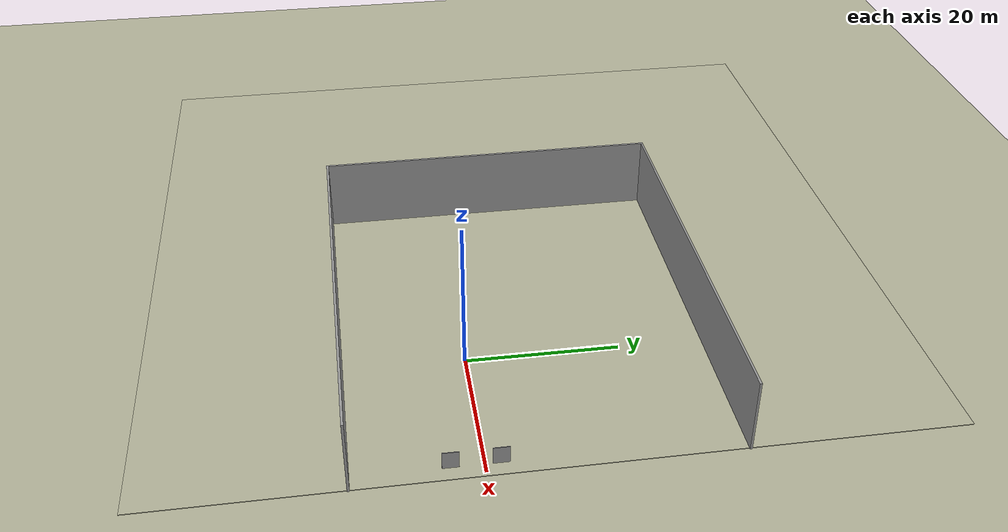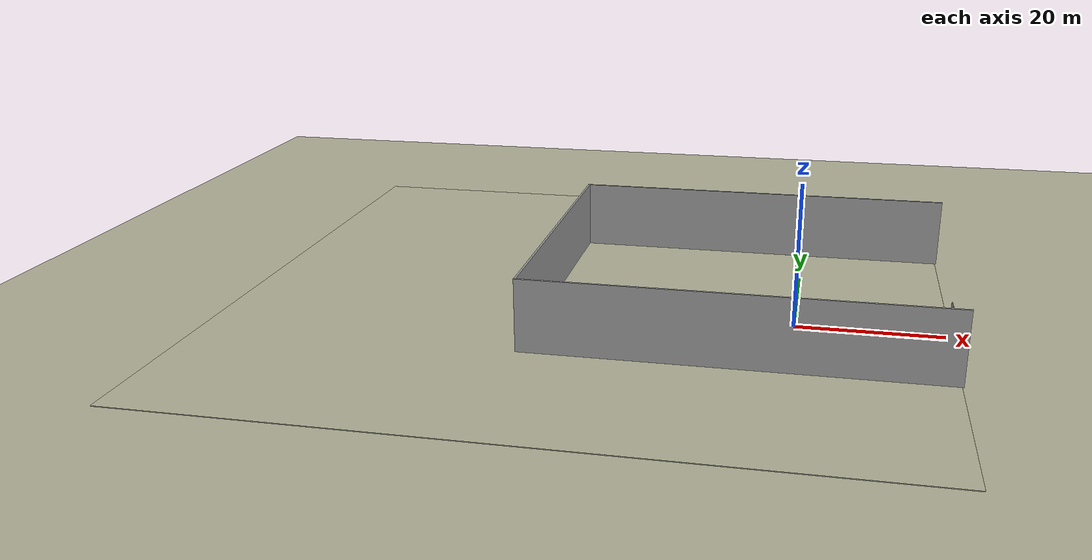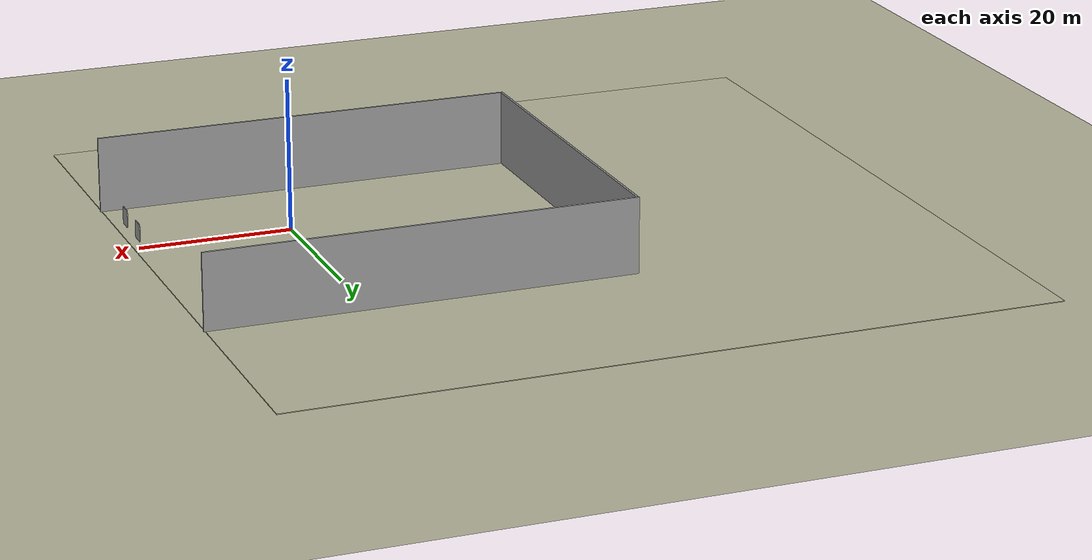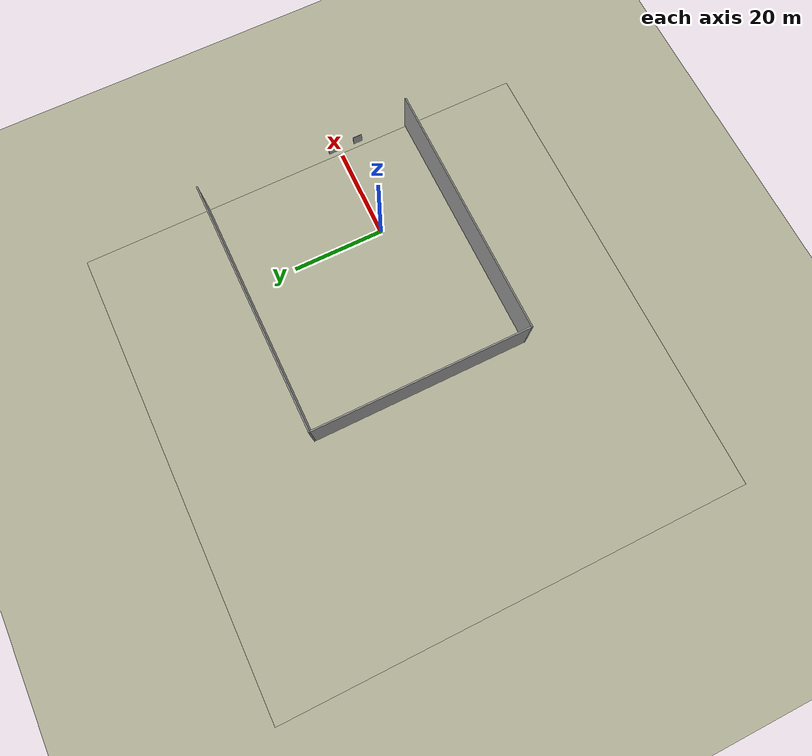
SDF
<sdf version="1.6">
 <world name="default">
  <model name="unit_box">
   <link name="link">
    <inertial>
     <mass>1</mass>
     <inertia>
      <ixx>0.166667</ixx>
      <ixy>0</ixy>
      <ixz>0</ixz>
      <iyy>0.166667</iyy>
      <iyz>0</iyz>
      <izz>0.166667</izz>
     </inertia>
    </inertial>
    <visual name="visual">
     <geometry><box><size>55.9 0.3 10</size></box></geometry>
     <material>
      <script><name>Gazebo/Grey</name><uri>file://media/materials/scripts/gazebo.material</uri></script>
      <shader type="vertex"><normal_map>__default__</normal_map></shader>
      <ambient>0.3 0.3 0.3 1</ambient>
      <diffuse>0.7 0.7 0.7 1</diffuse>
      <specular>0.01 0.01 0.01 1</specular>
      <emissive>0 0 0 1</emissive>
     </material>
    </visual>
    <collision name="collision">
     <geometry><box><size>55.9 0.3 10</size></box></geometry>
     <surface>
      <friction>
       <ode><mu>1</mu><mu2>1</mu2><fdir1>0 0 0</fdir1><slip1>0</slip1><slip2>0</slip2></ode>
       <torsional>
        <coefficient>1</coefficient>
        <patch_radius>0</patch_radius>
        <surface_radius>0</surface_radius>
        <use_patch_radius>1</use_patch_radius>
        <ode><slip>0</slip></ode>
       </torsional>
      </friction>
      <bounce><restitution_coefficient>0</restitution_coefficient><threshold>1e+06</threshold></bounce>
      <contact>
       <collide_without_contact>0</collide_without_contact>
       <collide_without_contact_bitmask>1</collide_without_contact_bitmask>
       <collide_bitmask>1</collide_bitmask>
       <ode>
        <soft_cfm>0</soft_cfm>
        <soft_erp>0.2</soft_erp>
        <kp>1e+13</kp>
        <kd>1</kd>
        <max_vel>0.01</max_vel>
        <min_depth>0</min_depth>
       </ode>
       <bullet>
        <split_impulse>1</split_impulse>
        <split_impulse_penetration_threshold>-0.01</split_impulse_penetration_threshold>
        <soft_cfm>0</soft_cfm>
        <soft_erp>0.2</soft_erp>
        <kp>1e+13</kp>
        <kd>1</kd>
       </bullet>
      </contact>
     </surface>
    </collision>
   </link>
   <static>1</static>
   <pose>-7.07723 -15.7632 5.02175 0 -0 0</pose>
  </model>
  <model name="unit_box_clone">
   <link name="link">
    <inertial>
     <mass>1</mass>
     <inertia>
      <ixx>0.166667</ixx>
      <ixy>0</ixy>
      <ixz>0</ixz>
      <iyy>0.166667</iyy>
      <iyz>0</iyz>
      <izz>0.166667</izz>
     </inertia>
    </inertial>
    <visual name="visual">
     <geometry><box><size>55.9 0.3 10</size></box></geometry>
     <material>
      <script><name>Gazebo/Grey</name><uri>file://media/materials/scripts/gazebo.material</uri></script>
      <shader type="vertex"><normal_map>__default__</normal_map></shader>
      <ambient>0.3 0.3 0.3 1</ambient>
      <diffuse>0.7 0.7 0.7 1</diffuse>
      <specular>0.01 0.01 0.01 1</specular>
      <emissive>0 0 0 1</emissive>
     </material>
    </visual>
    <collision name="collision">
     <geometry><box><size>55.9 0.3 10</size></box></geometry>
     <surface>
      <friction>
       <ode><mu>1</mu><mu2>1</mu2><fdir1>0 0 0</fdir1><slip1>0</slip1><slip2>0</slip2></ode>
       <torsional>
        <coefficient>1</coefficient>
        <patch_radius>0</patch_radius>
        <surface_radius>0</surface_radius>
        <use_patch_radius>1</use_patch_radius>
        <ode><slip>0</slip></ode>
       </torsional>
      </friction>
      <bounce><restitution_coefficient>0</restitution_coefficient><threshold>1e+06</threshold></bounce>
      <contact>
       <collide_without_contact>0</collide_without_contact>
       <collide_without_contact_bitmask>1</collide_without_contact_bitmask>
       <collide_bitmask>1</collide_bitmask>
       <ode>
        <soft_cfm>0</soft_cfm>
        <soft_erp>0.2</soft_erp>
        <kp>1e+13</kp>
        <kd>1</kd>
        <max_vel>0.01</max_vel>
        <min_depth>0</min_depth>
       </ode>
       <bullet>
        <split_impulse>1</split_impulse>
        <split_impulse_penetration_threshold>-0.01</split_impulse_penetration_threshold>
        <soft_cfm>0</soft_cfm>
        <soft_erp>0.2</soft_erp>
        <kp>1e+13</kp>
        <kd>1</kd>
       </bullet>
      </contact>
     </surface>
    </collision>
   </link>
   <static>1</static>
   <pose>-7.07723 31.1736 5.02175 0 -0 0</pose>
  </model>
  <model name="unit_box_clone_0_clone">
   <link name="link">
    <inertial>
     <mass>1</mass>
     <inertia>
      <ixx>0.166667</ixx>
      <ixy>0</ixy>
      <ixz>0</ixz>
      <iyy>0.166667</iyy>
      <iyz>0</iyz>
      <izz>0.166667</izz>
     </inertia>
    </inertial>
    <visual name="visual">
     <geometry><box><size>47 0.3 10</size></box></geometry>
     <material>
      <script><name>Gazebo/Grey</name><uri>file://media/materials/scripts/gazebo.material</uri></script>
      <shader type="vertex"><normal_map>__default__</normal_map></shader>
      <ambient>0.3 0.3 0.3 1</ambient>
      <diffuse>0.7 0.7 0.7 1</diffuse>
      <specular>0.01 0.01 0.01 1</specular>
      <emissive>0 0 0 1</emissive>
     </material>
    </visual>
    <collision name="collision">
     <geometry><box><size>47 0.3 10</size></box></geometry>
     <surface>
      <friction>
       <ode><mu>1</mu><mu2>1</mu2><fdir1>0 0 0</fdir1><slip1>0</slip1><slip2>0</slip2></ode>
       <torsional>
        <coefficient>1</coefficient>
        <patch_radius>0</patch_radius>
        <surface_radius>0</surface_radius>
        <use_patch_radius>1</use_patch_radius>
        <ode><slip>0</slip></ode>
       </torsional>
      </friction>
      <bounce><restitution_coefficient>0</restitution_coefficient><threshold>1e+06</threshold></bounce>
      <contact>
       <collide_without_contact>0</collide_without_contact>
       <collide_without_contact_bitmask>1</collide_without_contact_bitmask>
       <collide_bitmask>1</collide_bitmask>
       <ode>
        <soft_cfm>0</soft_cfm>
        <soft_erp>0.2</soft_erp>
        <kp>1e+13</kp>
        <kd>1</kd>
        <max_vel>0.01</max_vel>
        <min_depth>0</min_depth>
       </ode>
       <bullet>
        <split_impulse>1</split_impulse>
        <split_impulse_penetration_threshold>-0.01</split_impulse_penetration_threshold>
        <soft_cfm>0</soft_cfm>
        <soft_erp>0.2</soft_erp>
        <kp>1e+13</kp>
        <kd>1</kd>
       </bullet>
      </contact>
     </surface>
    </collision>
   </link>
   <static>1</static>
   <pose>-34.8508 7.80061 5.02175 0 -0 1.5703</pose>
  </model>
  <model name="ground_plane_residential">
   <static>1</static>
   <link name="link">
    <collision name="collision">
     <geometry><plane><normal>0 0 1</normal><size>100 100</size></plane></geometry>
     <surface><friction><ode><mu>100</mu><mu2>50</mu2></ode></friction></surface>
    </collision>
    <visual name="visual">
     <cast_shadows>0</cast_shadows>
     <geometry><plane><normal>0 0 1</normal><size>100 100</size></plane></geometry>
     <material>
      <script><uri>file://media/materials/scripts/gazebo.material</uri><name>Gazebo/Residential</name></script>
     </material>
    </visual>
   </link>
   <pose>10.826 8.93062 0 0 -0 0</pose>
  </model>
  <model name="ground_plane_residential_0">
   <static>1</static>
   <link name="link">
    <collision name="collision">
     <geometry><plane><normal>0 0 1</normal><size>100 100</size></plane></geometry>
     <surface><friction><ode><mu>100</mu><mu2>50</mu2></ode></friction></surface>
    </collision>
    <visual name="visual">
     <cast_shadows>0</cast_shadows>
     <geometry><plane><normal>0 0 1</normal><size>100 100</size></plane></geometry>
     <material>
      <script><uri>file://media/materials/scripts/gazebo.material</uri><name>Gazebo/Residential</name></script>
     </material>
    </visual>
   </link>
   <pose>-29.3425 8.99589 0 0 -0 0</pose>
  </model>
  <model name="unit_box_0_clone_clone">
   <link name="link">
    <inertial>
     <mass>1</mass>
     <inertia>
      <ixx>0.166667</ixx>
      <ixy>0</ixy>
      <ixz>0</ixz>
      <iyy>0.166667</iyy>
      <iyz>0</iyz>
      <izz>0.166667</izz>
     </inertia>
    </inertial>
    <visual name="visual">
     <geometry><box><size>0.1 2 2.3</size></box></geometry>
     <material>
      <script><name>Gazebo/Grey</name><uri>file://media/materials/scripts/gazebo.material</uri></script>
      <shader type="vertex"><normal_map>__default__</normal_map></shader>
      <ambient>0.2 0.2 0.2 1</ambient>
      <diffuse>0.1 0.1 0.1 1</diffuse>
      <specular>0.5 0.5 0.5 1</specular>
      <emissive>0 0 0 1</emissive>
     </material>
    </visual>
    <collision name="collision">
     <geometry><box><size>0.1 2 2.3</size></box></geometry>
     <surface>
      <friction>
       <ode><mu>1</mu><mu2>1</mu2><fdir1>0 0 0</fdir1><slip1>0</slip1><slip2>0</slip2></ode>
       <torsional>
        <coefficient>1</coefficient>
        <patch_radius>0</patch_radius>
        <surface_radius>0</surface_radius>
        <use_patch_radius>1</use_patch_radius>
        <ode><slip>0</slip></ode>
       </torsional>
      </friction>
      <bounce><restitution_coefficient>0</restitution_coefficient><threshold>1e+06</threshold></bounce>
      <contact>
       <collide_without_contact>0</collide_without_contact>
       <collide_without_contact_bitmask>1</collide_without_contact_bitmask>
       <collide_bitmask>1</collide_bitmask>
       <ode>
        <soft_cfm>0</soft_cfm>
        <soft_erp>0.2</soft_erp>
        <kp>1e+13</kp>
        <kd>1</kd>
        <max_vel>0.01</max_vel>
        <min_depth>0</min_depth>
       </ode>
       <bullet>
        <split_impulse>1</split_impulse>
        <split_impulse_penetration_threshold>-0.01</split_impulse_penetration_threshold>
        <soft_cfm>0</soft_cfm>
        <soft_erp>0.2</soft_erp>
        <kp>1e+13</kp>
        <kd>1</kd>
       </bullet>
      </contact>
     </surface>
    </collision>
   </link>
   <static>1</static>
   <pose>20.6155 1.6862 3.03081 0 -0 0</pose>
  </model>
  <model name="unit_box_0_clone_clone_0">
   <link name="link">
    <inertial>
     <mass>1</mass>
     <inertia>
      <ixx>0.166667</ixx>
      <ixy>0</ixy>
      <ixz>0</ixz>
      <iyy>0.166667</iyy>
      <iyz>0</iyz>
      <izz>0.166667</izz>
     </inertia>
    </inertial>
    <visual name="visual">
     <geometry><box><size>0.1 2 2.3</size></box></geometry>
     <material>
      <script><name>Gazebo/Grey</name><uri>file://media/materials/scripts/gazebo.material</uri></script>
      <shader type="vertex"><normal_map>__default__</normal_map></shader>
      <ambient>0.2 0.2 0.2 1</ambient>
      <diffuse>0.1 0.1 0.1 1</diffuse>
      <specular>0.5 0.5 0.5 1</specular>
      <emissive>0 0 0 1</emissive>
     </material>
    </visual>
    <collision name="collision">
     <geometry><box><size>0.1 2 2.3</size></box></geometry>
     <surface>
      <friction>
       <ode><mu>1</mu><mu2>1</mu2><fdir1>0 0 0</fdir1><slip1>0</slip1><slip2>0</slip2></ode>
       <torsional>
        <coefficient>1</coefficient>
        <patch_radius>0</patch_radius>
        <surface_radius>0</surface_radius>
        <use_patch_radius>1</use_patch_radius>
        <ode><slip>0</slip></ode>
       </torsional>
      </friction>
      <bounce><restitution_coefficient>0</restitution_coefficient><threshold>1e+06</threshold></bounce>
      <contact>
       <collide_without_contact>0</collide_without_contact>
       <collide_without_contact_bitmask>1</collide_without_contact_bitmask>
       <collide_bitmask>1</collide_bitmask>
       <ode>
        <soft_cfm>0</soft_cfm>
        <soft_erp>0.2</soft_erp>
        <kp>1e+13</kp>
        <kd>1</kd>
        <max_vel>0.01</max_vel>
        <min_depth>0</min_depth>
       </ode>
       <bullet>
        <split_impulse>1</split_impulse>
        <split_impulse_penetration_threshold>-0.01</split_impulse_penetration_threshold>
        <soft_cfm>0</soft_cfm>
        <soft_erp>0.2</soft_erp>
        <kp>1e+13</kp>
        <kd>1</kd>
       </bullet>
      </contact>
     </surface>
    </collision>
   </link>
   <static>1</static>
   <pose>20.6155 -4.11887 3.03081 0 -0 0</pose>
  </model>
 </world>
</sdf>
